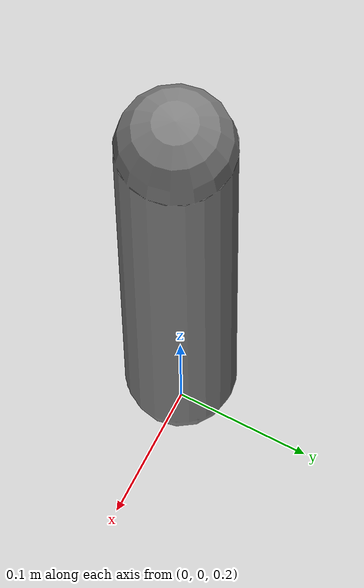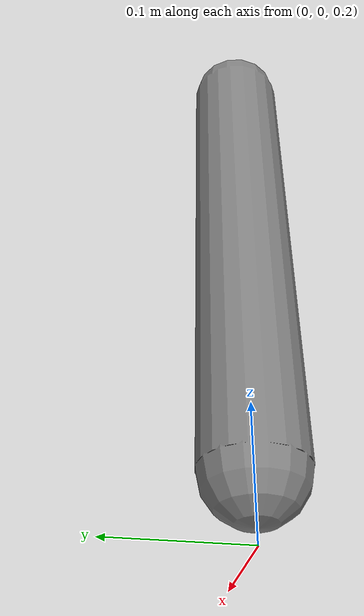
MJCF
<mujoco model="model-release-example">
  <option timestep="0.002"/>

  <worldbody>
    <body name="arm_link" pos="0 0 0.25">
      <joint
        name="arm_hinge"
        type="hinge"
        axis="0 1 0"
        limited="true"
        range="-45 45"
      />
      <geom
        name="arm_geom"
        type="capsule"
        fromto="0 0 0 0 0 0.4"
        size="0.04"
        mass="1.25"
      />
    </body>
  </worldbody>

  <actuator>
    <motor name="arm_motor" joint="arm_hinge" gear="1"/>
  </actuator>
</mujoco>
